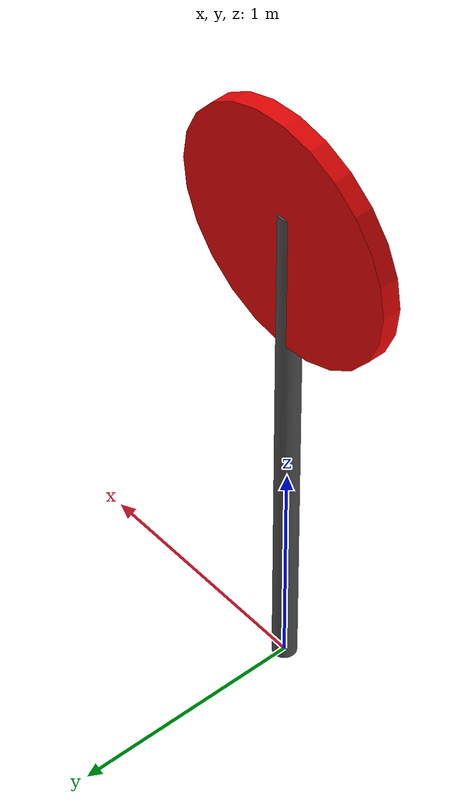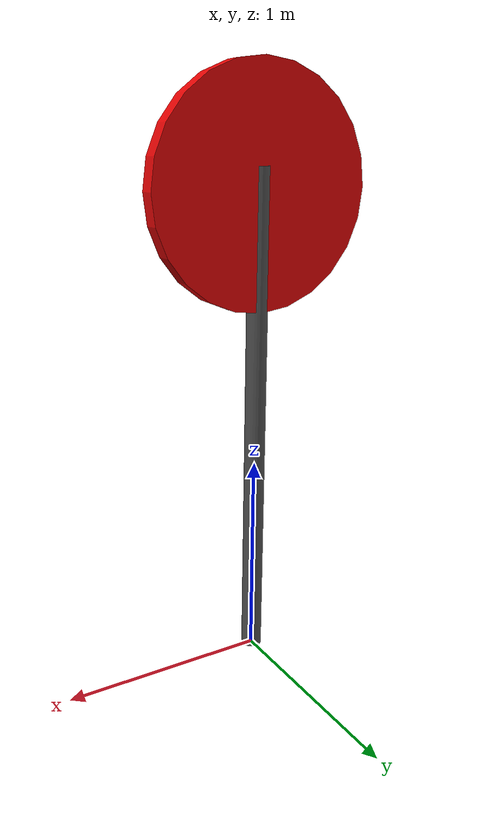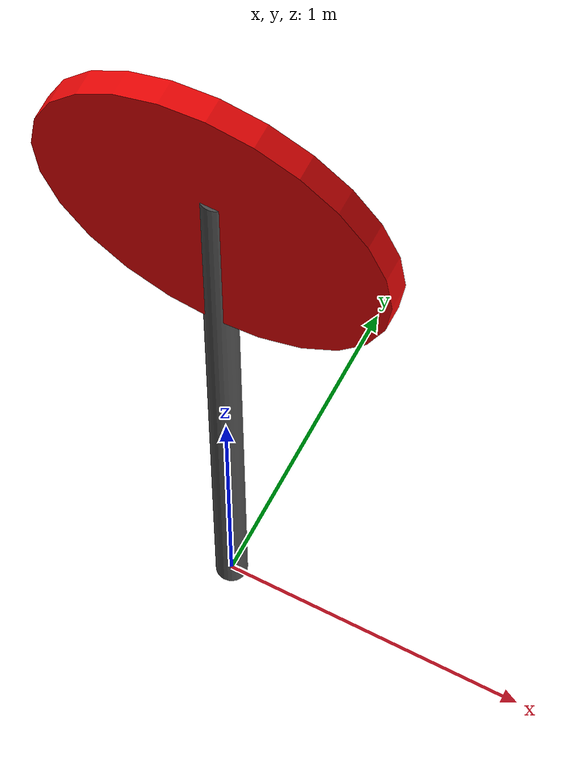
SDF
<?xml version="1.0"?><sdf version="1.8"><model name="inspection_stop_sign"><static>true</static><link name="sign"><visual name="pole"><pose>0 0 1.2 0 0 0</pose><geometry><cylinder><radius>0.05</radius><length>2.4</length></cylinder></geometry><material><ambient>0.3 0.3 0.3 1</ambient></material></visual><visual name="panel"><pose>0 0 2.3 1.5708 0 0</pose><geometry><cylinder><radius>0.55</radius><length>0.08</length></cylinder></geometry><material><ambient>0.9 0.02 0.02 1</ambient><diffuse>0.9 0.02 0.02 1</diffuse></material></visual></link></model></sdf>
